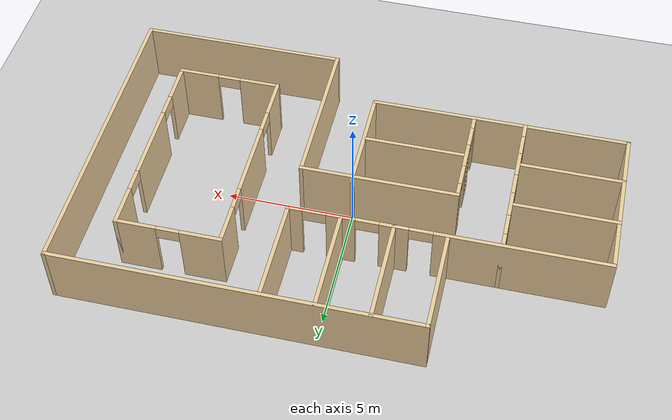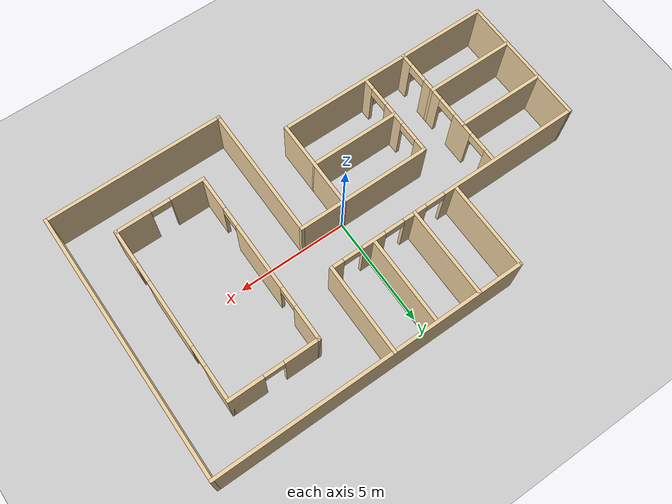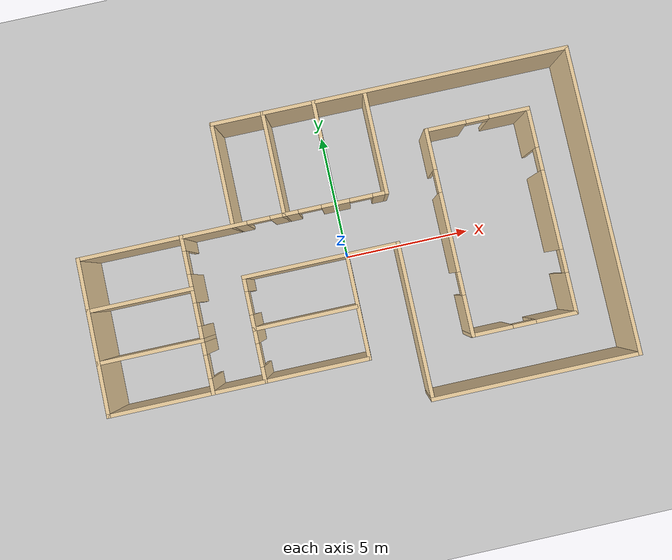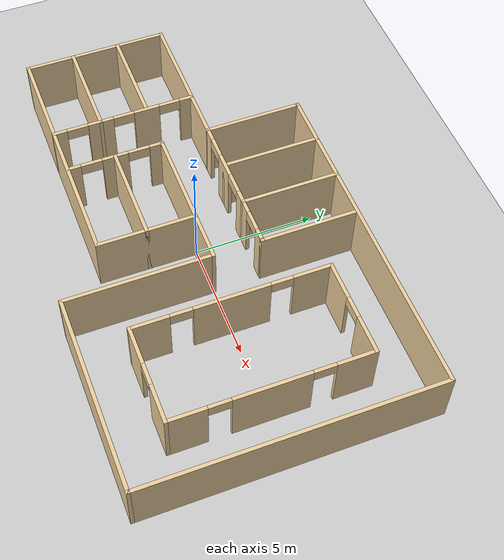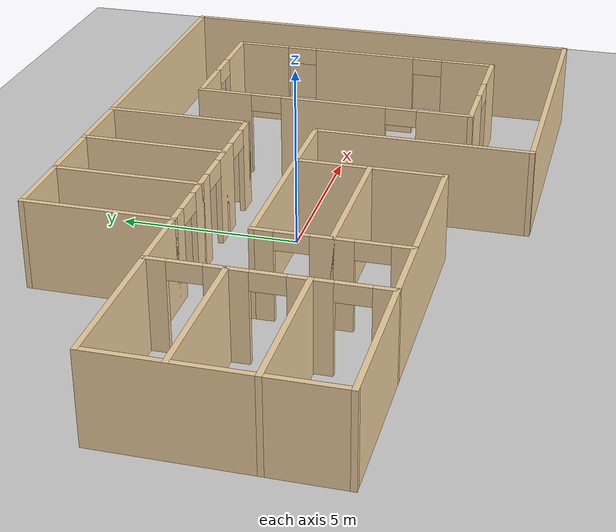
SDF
<sdf version="1.7">
 <world name="default">
  <light name="sun" type="directional">
   <pose>0 0 10 0 -0 0</pose>
   <diffuse>0.8 0.8 0.8 1</diffuse>
   <specular>0.2 0.2 0.2 1</specular>
   <attenuation>
    <range>1000</range>
    <constant>0.9</constant>
    <linear>0.01</linear>
    <quadratic>0.001</quadratic>
   </attenuation>
   <direction>-0.5 0.1 -0.9</direction>
   <spot><inner_angle>0</inner_angle><outer_angle>0</outer_angle><falloff>0</falloff></spot>
  </light>
  <model name="ground_plane">
   <static>1</static>
   <link name="link">
    <collision name="collision">
     <geometry><plane><normal>0 0 1</normal><size>100 100</size></plane></geometry>
     <surface>
      <contact><collide_bitmask>65535</collide_bitmask></contact>
      <friction><ode><mu>100</mu><mu2>50</mu2></ode></friction>
     </surface>
    </collision>
    <visual name="visual">
     <cast_shadows>0</cast_shadows>
     <geometry><plane><normal>0 0 1</normal><size>100 100</size></plane></geometry>
     <material>
      <script><uri>file://media/materials/scripts/gazebo.material</uri><name>Gazebo/Grey</name></script>
     </material>
    </visual>
   </link>
  </model>
  <gravity>0 0 -9.8</gravity>
  <magnetic_field>6e-06 2.3e-05 -4.2e-05</magnetic_field>
  <atmosphere type="adiabatic"/>
  <physics type="ode">
   <max_step_size>0.001</max_step_size>
   <real_time_factor>1</real_time_factor>
   <real_time_update_rate>1000</real_time_update_rate>
  </physics>
  <scene><ambient>0.4 0.4 0.4 1</ambient><background>0.7 0.7 0.7 1</background><shadows>1</shadows></scene>
  <spherical_coordinates>
   <surface_model>EARTH_WGS84</surface_model>
   <latitude_deg>0</latitude_deg>
   <longitude_deg>0</longitude_deg>
   <elevation>0</elevation>
   <heading_deg>0</heading_deg>
  </spherical_coordinates>
  <model name="test_small">
   <link name="Wall_0">
    <collision name="Wall_0_Collision">
     <geometry><box><size>14.15 0.15 2.5</size></box></geometry>
     <pose>0 0 1.25 0 -0 0</pose>
    </collision>
    <visual name="Wall_0_Visual">
     <pose>0 0 1.25 0 -0 0</pose>
     <geometry><box><size>14.15 0.15 2.5</size></box></geometry>
     <material>
      <script><uri>file://media/materials/scripts/gazebo.material</uri><name>Gazebo/Grey</name></script>
      <ambient>0.921569 0.807843 0.615686 1</ambient>
     </material>
     <meta><layer>0</layer></meta>
    </visual>
    <pose>3 6 0 0 -0 3.14159</pose>
   </link>
   <link name="Wall_10">
    <pose>-4 2 0 0 -0 0</pose>
    <visual name="Wall_10_Visual_0">
     <pose>-2.7625 0 1.25 0 -0 0</pose>
     <geometry><box><size>6.625 0.15 2.5</size></box></geometry>
     <material>
      <script><uri>file://media/materials/scripts/gazebo.material</uri><name>Gazebo/Grey</name></script>
      <ambient>0.921569 0.807843 0.615686 1</ambient>
     </material>
     <meta><layer>0</layer></meta>
    </visual>
    <collision name="Wall_10_Collision_0">
     <geometry><box><size>6.625 0.15 2.5</size></box></geometry>
     <pose>-2.7625 0 1.25 0 -0 0</pose>
    </collision>
    <visual name="Wall_10_Visual_1">
     <pose>2 0 1.25 0 -0 0</pose>
     <geometry><box><size>1.1 0.15 2.5</size></box></geometry>
     <material>
      <script><uri>file://media/materials/scripts/gazebo.material</uri><name>Gazebo/Grey</name></script>
      <ambient>0.921569 0.807843 0.615686 1</ambient>
     </material>
     <meta><layer>0</layer></meta>
    </visual>
    <collision name="Wall_10_Collision_1">
     <geometry><box><size>1.1 0.15 2.5</size></box></geometry>
     <pose>2 0 1.25 0 -0 0</pose>
    </collision>
    <visual name="Wall_10_Visual_2">
     <pose>4 0 1.25 0 -0 0</pose>
     <geometry><box><size>1.1 0.15 2.5</size></box></geometry>
     <material>
      <script><uri>file://media/materials/scripts/gazebo.material</uri><name>Gazebo/Grey</name></script>
      <ambient>0.921569 0.807843 0.615686 1</ambient>
     </material>
     <meta><layer>0</layer></meta>
    </visual>
    <collision name="Wall_10_Collision_2">
     <geometry><box><size>1.1 0.15 2.5</size></box></geometry>
     <pose>4 0 1.25 0 -0 0</pose>
    </collision>
    <visual name="Wall_10_Visual_3">
     <pose>5.7625 0 1.25 0 -0 0</pose>
     <geometry><box><size>0.625 0.15 2.5</size></box></geometry>
     <material>
      <script><uri>file://media/materials/scripts/gazebo.material</uri><name>Gazebo/Grey</name></script>
      <ambient>0.921569 0.807843 0.615686 1</ambient>
     </material>
     <meta><layer>0</layer></meta>
    </visual>
    <collision name="Wall_10_Collision_3">
     <geometry><box><size>0.625 0.15 2.5</size></box></geometry>
     <pose>5.7625 0 1.25 0 -0 0</pose>
    </collision>
    <visual name="Wall_10_Visual_4">
     <pose>1 0 2.25 0 -0 0</pose>
     <geometry><box><size>0.9 0.15 0.5</size></box></geometry>
     <material>
      <script><uri>file://media/materials/scripts/gazebo.material</uri><name>Gazebo/Grey</name></script>
      <ambient>0.921569 0.807843 0.615686 1</ambient>
     </material>
     <meta><layer>0</layer></meta>
    </visual>
    <collision name="Wall_10_Collision_4">
     <geometry><box><size>0.9 0.15 0.5</size></box></geometry>
     <pose>1 0 2.25 0 -0 0</pose>
    </collision>
    <visual name="Wall_10_Visual_5">
     <pose>3 0 2.25 0 -0 0</pose>
     <geometry><box><size>0.9 0.15 0.5</size></box></geometry>
     <material>
      <script><uri>file://media/materials/scripts/gazebo.material</uri><name>Gazebo/Grey</name></script>
      <ambient>0.921569 0.807843 0.615686 1</ambient>
     </material>
     <meta><layer>0</layer></meta>
    </visual>
    <collision name="Wall_10_Collision_5">
     <geometry><box><size>0.9 0.15 0.5</size></box></geometry>
     <pose>3 0 2.25 0 -0 0</pose>
    </collision>
    <visual name="Wall_10_Visual_6">
     <pose>5 0 2.25 0 -0 0</pose>
     <geometry><box><size>0.9 0.15 0.5</size></box></geometry>
     <material>
      <script><uri>file://media/materials/scripts/gazebo.material</uri><name>Gazebo/Grey</name></script>
      <ambient>0.921569 0.807843 0.615686 1</ambient>
     </material>
     <meta><layer>0</layer></meta>
    </visual>
    <collision name="Wall_10_Collision_6">
     <geometry><box><size>0.9 0.15 0.5</size></box></geometry>
     <pose>5 0 2.25 0 -0 0</pose>
    </collision>
   </link>
   <link name="Wall_11">
    <collision name="Wall_11_Collision">
     <geometry><box><size>4.15 0.15 2.5</size></box></geometry>
     <pose>0 0 1.25 0 -0 0</pose>
    </collision>
    <visual name="Wall_11_Visual">
     <pose>0 0 1.25 0 -0 0</pose>
     <geometry><box><size>4.15 0.15 2.5</size></box></geometry>
     <material>
      <script><uri>file://media/materials/scripts/gazebo.material</uri><name>Gazebo/Grey</name></script>
      <ambient>0.921569 0.807843 0.615686 1</ambient>
     </material>
     <meta><layer>0</layer></meta>
    </visual>
    <pose>2 4 0 0 -0 1.5708</pose>
   </link>
   <link name="Wall_13">
    <collision name="Wall_13_Collision">
     <geometry><box><size>4.15 0.15 2.5</size></box></geometry>
     <pose>0 0 1.25 0 -0 0</pose>
    </collision>
    <visual name="Wall_13_Visual">
     <pose>0 0 1.25 0 -0 0</pose>
     <geometry><box><size>4.15 0.15 2.5</size></box></geometry>
     <material>
      <script><uri>file://media/materials/scripts/gazebo.material</uri><name>Gazebo/Grey</name></script>
      <ambient>0.921569 0.807843 0.615686 1</ambient>
     </material>
     <meta><layer>0</layer></meta>
    </visual>
    <pose>-4 4 0 0 -0 -1.5708</pose>
   </link>
   <link name="Wall_15">
    <collision name="Wall_15_Collision">
     <geometry><box><size>4.15 0.15 2.5</size></box></geometry>
     <pose>0 0 1.25 0 -0 0</pose>
    </collision>
    <visual name="Wall_15_Visual">
     <pose>0 0 1.25 0 -0 0</pose>
     <geometry><box><size>4.15 0.15 2.5</size></box></geometry>
     <material>
      <script><uri>file://media/materials/scripts/gazebo.material</uri><name>Gazebo/Grey</name></script>
      <ambient>0.921569 0.807843 0.615686 1</ambient>
     </material>
     <meta><layer>0</layer></meta>
    </visual>
    <pose>-2 4 0 0 -0 -1.5708</pose>
   </link>
   <link name="Wall_17">
    <collision name="Wall_17_Collision">
     <geometry><box><size>4.15 0.15 2.5</size></box></geometry>
     <pose>0 0 1.25 0 -0 0</pose>
    </collision>
    <visual name="Wall_17_Visual">
     <pose>0 0 1.25 0 -0 0</pose>
     <geometry><box><size>4.15 0.15 2.5</size></box></geometry>
     <material>
      <script><uri>file://media/materials/scripts/gazebo.material</uri><name>Gazebo/Grey</name></script>
      <ambient>0.921569 0.807843 0.615686 1</ambient>
     </material>
     <meta><layer>0</layer></meta>
    </visual>
    <pose>0 4 0 0 -0 -1.5708</pose>
   </link>
   <link name="Wall_19">
    <collision name="Wall_19_Collision">
     <geometry><box><size>4.15 0.15 2.5</size></box></geometry>
     <pose>0 0 1.25 0 -0 0</pose>
    </collision>
    <visual name="Wall_19_Visual">
     <pose>0 0 1.25 0 -0 0</pose>
     <geometry><box><size>4.15 0.15 2.5</size></box></geometry>
     <material>
      <script><uri>file://media/materials/scripts/gazebo.material</uri><name>Gazebo/Grey</name></script>
      <ambient>0.921569 0.807843 0.615686 1</ambient>
     </material>
     <meta><layer>0</layer></meta>
    </visual>
    <pose>0 -2 0 0 -0 1.5708</pose>
   </link>
   <link name="Wall_2">
    <collision name="Wall_2_Collision">
     <geometry><box><size>12.15 0.15 2.5</size></box></geometry>
     <pose>0 0 1.25 0 -0 0</pose>
    </collision>
    <visual name="Wall_2_Visual">
     <pose>0 0 1.25 0 -0 0</pose>
     <geometry><box><size>12.15 0.15 2.5</size></box></geometry>
     <material>
      <script><uri>file://media/materials/scripts/gazebo.material</uri><name>Gazebo/Grey</name></script>
      <ambient>0.921569 0.807843 0.615686 1</ambient>
     </material>
     <meta><layer>0</layer></meta>
    </visual>
    <pose>10 0 0 0 -0 -1.5708</pose>
   </link>
   <link name="Wall_21">
    <collision name="Wall_21_Collision">
     <geometry><box><size>4.15 0.15 2.5</size></box></geometry>
     <pose>0 0 1.25 0 -0 0</pose>
    </collision>
    <visual name="Wall_21_Visual">
     <pose>0 0 1.25 0 -0 0</pose>
     <geometry><box><size>4.15 0.15 2.5</size></box></geometry>
     <material>
      <script><uri>file://media/materials/scripts/gazebo.material</uri><name>Gazebo/Grey</name></script>
      <ambient>0.921569 0.807843 0.615686 1</ambient>
     </material>
     <meta><layer>0</layer></meta>
    </visual>
    <pose>-2 -2 0 0 -0 0</pose>
   </link>
   <link name="Wall_23">
    <pose>-6 -1 0 0 -0 -1.5708</pose>
    <visual name="Wall_23_Visual_0">
     <pose>-2.7625 0 1.25 0 -0 0</pose>
     <geometry><box><size>0.625 0.15 2.5</size></box></geometry>
     <material>
      <script><uri>file://media/materials/scripts/gazebo.material</uri><name>Gazebo/Grey</name></script>
      <ambient>0.921569 0.807843 0.615686 1</ambient>
     </material>
     <meta><layer>0</layer></meta>
    </visual>
    <collision name="Wall_23_Collision_0">
     <geometry><box><size>0.625 0.15 2.5</size></box></geometry>
     <pose>-2.7625 0 1.25 0 -0 0</pose>
    </collision>
    <visual name="Wall_23_Visual_1">
     <pose>-0.999281 0 1.25 0 -0 0</pose>
     <geometry><box><size>1.10144 0.15 2.5</size></box></geometry>
     <material>
      <script><uri>file://media/materials/scripts/gazebo.material</uri><name>Gazebo/Grey</name></script>
      <ambient>0.921569 0.807843 0.615686 1</ambient>
     </material>
     <meta><layer>0</layer></meta>
    </visual>
    <collision name="Wall_23_Collision_1">
     <geometry><box><size>1.10144 0.15 2.5</size></box></geometry>
     <pose>-0.999281 0 1.25 0 -0 0</pose>
    </collision>
    <visual name="Wall_23_Visual_2">
     <pose>1.00072 0 1.25 0 -0 0</pose>
     <geometry><box><size>1.09856 0.15 2.5</size></box></geometry>
     <material>
      <script><uri>file://media/materials/scripts/gazebo.material</uri><name>Gazebo/Grey</name></script>
      <ambient>0.921569 0.807843 0.615686 1</ambient>
     </material>
     <meta><layer>0</layer></meta>
    </visual>
    <collision name="Wall_23_Collision_2">
     <geometry><box><size>1.09856 0.15 2.5</size></box></geometry>
     <pose>1.00072 0 1.25 0 -0 0</pose>
    </collision>
    <visual name="Wall_23_Visual_3">
     <pose>2.7625 0 1.25 0 -0 0</pose>
     <geometry><box><size>0.625 0.15 2.5</size></box></geometry>
     <material>
      <script><uri>file://media/materials/scripts/gazebo.material</uri><name>Gazebo/Grey</name></script>
      <ambient>0.921569 0.807843 0.615686 1</ambient>
     </material>
     <meta><layer>0</layer></meta>
    </visual>
    <collision name="Wall_23_Collision_3">
     <geometry><box><size>0.625 0.15 2.5</size></box></geometry>
     <pose>2.7625 0 1.25 0 -0 0</pose>
    </collision>
    <visual name="Wall_23_Visual_4">
     <pose>-2 0 2.25 0 -0 0</pose>
     <geometry><box><size>0.9 0.15 0.5</size></box></geometry>
     <material>
      <script><uri>file://media/materials/scripts/gazebo.material</uri><name>Gazebo/Grey</name></script>
      <ambient>0.921569 0.807843 0.615686 1</ambient>
     </material>
     <meta><layer>0</layer></meta>
    </visual>
    <collision name="Wall_23_Collision_4">
     <geometry><box><size>0.9 0.15 0.5</size></box></geometry>
     <pose>-2 0 2.25 0 -0 0</pose>
    </collision>
    <visual name="Wall_23_Visual_5">
     <pose>0.001438 0 2.25 0 -0 0</pose>
     <geometry><box><size>0.9 0.15 0.5</size></box></geometry>
     <material>
      <script><uri>file://media/materials/scripts/gazebo.material</uri><name>Gazebo/Grey</name></script>
      <ambient>0.921569 0.807843 0.615686 1</ambient>
     </material>
     <meta><layer>0</layer></meta>
    </visual>
    <collision name="Wall_23_Collision_5">
     <geometry><box><size>0.9 0.15 0.5</size></box></geometry>
     <pose>0.001438 0 2.25 0 -0 0</pose>
    </collision>
    <visual name="Wall_23_Visual_6">
     <pose>2 0 2.25 0 -0 0</pose>
     <geometry><box><size>0.9 0.15 0.5</size></box></geometry>
     <material>
      <script><uri>file://media/materials/scripts/gazebo.material</uri><name>Gazebo/Grey</name></script>
      <ambient>0.921569 0.807843 0.615686 1</ambient>
     </material>
     <meta><layer>0</layer></meta>
    </visual>
    <collision name="Wall_23_Collision_6">
     <geometry><box><size>0.9 0.15 0.5</size></box></geometry>
     <pose>2 0 2.25 0 -0 0</pose>
    </collision>
   </link>
   <link name="Wall_25">
    <collision name="Wall_25_Collision">
     <geometry><box><size>4.15 0.15 2.5</size></box></geometry>
     <pose>0 0 1.25 0 -0 0</pose>
    </collision>
    <visual name="Wall_25_Visual">
     <pose>0 0 1.25 0 -0 0</pose>
     <geometry><box><size>4.15 0.15 2.5</size></box></geometry>
     <material>
      <script><uri>file://media/materials/scripts/gazebo.material</uri><name>Gazebo/Grey</name></script>
      <ambient>0.921569 0.807843 0.615686 1</ambient>
     </material>
     <meta><layer>0</layer></meta>
    </visual>
    <pose>-8 -2 0 0 -0 3.14159</pose>
   </link>
   <link name="Wall_27">
    <collision name="Wall_27_Collision">
     <geometry><box><size>4.15 0.15 2.5</size></box></geometry>
     <pose>0 0 1.25 0 -0 0</pose>
    </collision>
    <visual name="Wall_27_Visual">
     <pose>0 0 1.25 0 -0 0</pose>
     <geometry><box><size>4.15 0.15 2.5</size></box></geometry>
     <material>
      <script><uri>file://media/materials/scripts/gazebo.material</uri><name>Gazebo/Grey</name></script>
      <ambient>0.921569 0.807843 0.615686 1</ambient>
     </material>
     <meta><layer>0</layer></meta>
    </visual>
    <pose>-8 0 0 0 -0 3.14159</pose>
   </link>
   <link name="Wall_29">
    <pose>6 4 0 0 -0 0</pose>
    <visual name="Wall_29_Visual_0">
     <pose>-1.25921 0 1.25 0 -0 0</pose>
     <geometry><box><size>1.63158 0.15 2.5</size></box></geometry>
     <material>
      <script><uri>file://media/materials/scripts/gazebo.material</uri><name>Gazebo/Grey</name></script>
      <ambient>0.921569 0.807843 0.615686 1</ambient>
     </material>
     <meta><layer>0</layer></meta>
    </visual>
    <collision name="Wall_29_Collision_0">
     <geometry><box><size>1.63158 0.15 2.5</size></box></geometry>
     <pose>-1.25921 0 1.25 0 -0 0</pose>
    </collision>
    <visual name="Wall_29_Visual_1">
     <pose>1.26579 0 1.25 0 -0 0</pose>
     <geometry><box><size>1.61842 0.15 2.5</size></box></geometry>
     <material>
      <script><uri>file://media/materials/scripts/gazebo.material</uri><name>Gazebo/Grey</name></script>
      <ambient>0.921569 0.807843 0.615686 1</ambient>
     </material>
     <meta><layer>0</layer></meta>
    </visual>
    <collision name="Wall_29_Collision_1">
     <geometry><box><size>1.61842 0.15 2.5</size></box></geometry>
     <pose>1.26579 0 1.25 0 -0 0</pose>
    </collision>
    <visual name="Wall_29_Visual_2">
     <pose>0.006581 0 2.25 0 -0 0</pose>
     <geometry><box><size>0.9 0.15 0.5</size></box></geometry>
     <material>
      <script><uri>file://media/materials/scripts/gazebo.material</uri><name>Gazebo/Grey</name></script>
      <ambient>0.921569 0.807843 0.615686 1</ambient>
     </material>
     <meta><layer>0</layer></meta>
    </visual>
    <collision name="Wall_29_Collision_2">
     <geometry><box><size>0.9 0.15 0.5</size></box></geometry>
     <pose>0.006581 0 2.25 0 -0 0</pose>
    </collision>
   </link>
   <link name="Wall_3">
    <collision name="Wall_3_Collision">
     <geometry><box><size>8.15 0.15 2.5</size></box></geometry>
     <pose>0 0 1.25 0 -0 0</pose>
    </collision>
    <visual name="Wall_3_Visual">
     <pose>0 0 1.25 0 -0 0</pose>
     <geometry><box><size>8.15 0.15 2.5</size></box></geometry>
     <material>
      <script><uri>file://media/materials/scripts/gazebo.material</uri><name>Gazebo/Grey</name></script>
      <ambient>0.921569 0.807843 0.615686 1</ambient>
     </material>
     <meta><layer>0</layer></meta>
    </visual>
    <pose>6 -6 0 0 -0 3.14159</pose>
   </link>
   <link name="Wall_30">
    <pose>8 0 0 0 -0 -1.5708</pose>
    <visual name="Wall_30_Visual_0">
     <pose>-3.2625 0 1.25 0 -0 0</pose>
     <geometry><box><size>1.625 0.15 2.5</size></box></geometry>
     <material>
      <script><uri>file://media/materials/scripts/gazebo.material</uri><name>Gazebo/Grey</name></script>
      <ambient>0.921569 0.807843 0.615686 1</ambient>
     </material>
     <meta><layer>0</layer></meta>
    </visual>
    <collision name="Wall_30_Collision_0">
     <geometry><box><size>1.625 0.15 2.5</size></box></geometry>
     <pose>-3.2625 0 1.25 0 -0 0</pose>
    </collision>
    <visual name="Wall_30_Visual_1">
     <pose>0 0 1.25 0 -0 0</pose>
     <geometry><box><size>3.1 0.15 2.5</size></box></geometry>
     <material>
      <script><uri>file://media/materials/scripts/gazebo.material</uri><name>Gazebo/Grey</name></script>
      <ambient>0.921569 0.807843 0.615686 1</ambient>
     </material>
     <meta><layer>0</layer></meta>
    </visual>
    <collision name="Wall_30_Collision_1">
     <geometry><box><size>3.1 0.15 2.5</size></box></geometry>
     <pose>0 0 1.25 0 -0 0</pose>
    </collision>
    <visual name="Wall_30_Visual_2">
     <pose>3.2625 0 1.25 0 -0 0</pose>
     <geometry><box><size>1.625 0.15 2.5</size></box></geometry>
     <material>
      <script><uri>file://media/materials/scripts/gazebo.material</uri><name>Gazebo/Grey</name></script>
      <ambient>0.921569 0.807843 0.615686 1</ambient>
     </material>
     <meta><layer>0</layer></meta>
    </visual>
    <collision name="Wall_30_Collision_2">
     <geometry><box><size>1.625 0.15 2.5</size></box></geometry>
     <pose>3.2625 0 1.25 0 -0 0</pose>
    </collision>
    <visual name="Wall_30_Visual_3">
     <pose>-2 0 2.25 0 -0 0</pose>
     <geometry><box><size>0.9 0.15 0.5</size></box></geometry>
     <material>
      <script><uri>file://media/materials/scripts/gazebo.material</uri><name>Gazebo/Grey</name></script>
      <ambient>0.921569 0.807843 0.615686 1</ambient>
     </material>
     <meta><layer>0</layer></meta>
    </visual>
    <collision name="Wall_30_Collision_3">
     <geometry><box><size>0.9 0.15 0.5</size></box></geometry>
     <pose>-2 0 2.25 0 -0 0</pose>
    </collision>
    <visual name="Wall_30_Visual_4">
     <pose>2 0 2.25 0 -0 0</pose>
     <geometry><box><size>0.9 0.15 0.5</size></box></geometry>
     <material>
      <script><uri>file://media/materials/scripts/gazebo.material</uri><name>Gazebo/Grey</name></script>
      <ambient>0.921569 0.807843 0.615686 1</ambient>
     </material>
     <meta><layer>0</layer></meta>
    </visual>
    <collision name="Wall_30_Collision_4">
     <geometry><box><size>0.9 0.15 0.5</size></box></geometry>
     <pose>2 0 2.25 0 -0 0</pose>
    </collision>
   </link>
   <link name="Wall_31">
    <pose>6 -4 0 0 -0 3.14159</pose>
    <visual name="Wall_31_Visual_0">
     <pose>-1.2625 0 1.25 0 -0 0</pose>
     <geometry><box><size>1.625 0.15 2.5</size></box></geometry>
     <material>
      <script><uri>file://media/materials/scripts/gazebo.material</uri><name>Gazebo/Grey</name></script>
      <ambient>0.921569 0.807843 0.615686 1</ambient>
     </material>
     <meta><layer>0</layer></meta>
    </visual>
    <collision name="Wall_31_Collision_0">
     <geometry><box><size>1.625 0.15 2.5</size></box></geometry>
     <pose>-1.2625 0 1.25 0 -0 0</pose>
    </collision>
    <visual name="Wall_31_Visual_1">
     <pose>1.2625 0 1.25 0 -0 0</pose>
     <geometry><box><size>1.625 0.15 2.5</size></box></geometry>
     <material>
      <script><uri>file://media/materials/scripts/gazebo.material</uri><name>Gazebo/Grey</name></script>
      <ambient>0.921569 0.807843 0.615686 1</ambient>
     </material>
     <meta><layer>0</layer></meta>
    </visual>
    <collision name="Wall_31_Collision_1">
     <geometry><box><size>1.625 0.15 2.5</size></box></geometry>
     <pose>1.2625 0 1.25 0 -0 0</pose>
    </collision>
    <visual name="Wall_31_Visual_2">
     <pose>0 0 2.25 0 -0 0</pose>
     <geometry><box><size>0.9 0.15 0.5</size></box></geometry>
     <material>
      <script><uri>file://media/materials/scripts/gazebo.material</uri><name>Gazebo/Grey</name></script>
      <ambient>0.921569 0.807843 0.615686 1</ambient>
     </material>
     <meta><layer>0</layer></meta>
    </visual>
    <collision name="Wall_31_Collision_2">
     <geometry><box><size>0.9 0.15 0.5</size></box></geometry>
     <pose>0 0 2.25 0 -0 0</pose>
    </collision>
   </link>
   <link name="Wall_32">
    <pose>4 0 0 0 -0 1.5708</pose>
    <visual name="Wall_32_Visual_0">
     <pose>-3.2625 0 1.25 0 -0 0</pose>
     <geometry><box><size>1.625 0.15 2.5</size></box></geometry>
     <material>
      <script><uri>file://media/materials/scripts/gazebo.material</uri><name>Gazebo/Grey</name></script>
      <ambient>0.921569 0.807843 0.615686 1</ambient>
     </material>
     <meta><layer>0</layer></meta>
    </visual>
    <collision name="Wall_32_Collision_0">
     <geometry><box><size>1.625 0.15 2.5</size></box></geometry>
     <pose>-3.2625 0 1.25 0 -0 0</pose>
    </collision>
    <visual name="Wall_32_Visual_1">
     <pose>0 0 1.25 0 -0 0</pose>
     <geometry><box><size>3.1 0.15 2.5</size></box></geometry>
     <material>
      <script><uri>file://media/materials/scripts/gazebo.material</uri><name>Gazebo/Grey</name></script>
      <ambient>0.921569 0.807843 0.615686 1</ambient>
     </material>
     <meta><layer>0</layer></meta>
    </visual>
    <collision name="Wall_32_Collision_1">
     <geometry><box><size>3.1 0.15 2.5</size></box></geometry>
     <pose>0 0 1.25 0 -0 0</pose>
    </collision>
    <visual name="Wall_32_Visual_2">
     <pose>3.2625 0 1.25 0 -0 0</pose>
     <geometry><box><size>1.625 0.15 2.5</size></box></geometry>
     <material>
      <script><uri>file://media/materials/scripts/gazebo.material</uri><name>Gazebo/Grey</name></script>
      <ambient>0.921569 0.807843 0.615686 1</ambient>
     </material>
     <meta><layer>0</layer></meta>
    </visual>
    <collision name="Wall_32_Collision_2">
     <geometry><box><size>1.625 0.15 2.5</size></box></geometry>
     <pose>3.2625 0 1.25 0 -0 0</pose>
    </collision>
    <visual name="Wall_32_Visual_3">
     <pose>-2 0 2.25 0 -0 0</pose>
     <geometry><box><size>0.9 0.15 0.5</size></box></geometry>
     <material>
      <script><uri>file://media/materials/scripts/gazebo.material</uri><name>Gazebo/Grey</name></script>
      <ambient>0.921569 0.807843 0.615686 1</ambient>
     </material>
     <meta><layer>0</layer></meta>
    </visual>
    <collision name="Wall_32_Collision_3">
     <geometry><box><size>0.9 0.15 0.5</size></box></geometry>
     <pose>-2 0 2.25 0 -0 0</pose>
    </collision>
    <visual name="Wall_32_Visual_4">
     <pose>2 0 2.25 0 -0 0</pose>
     <geometry><box><size>0.9 0.15 0.5</size></box></geometry>
     <material>
      <script><uri>file://media/materials/scripts/gazebo.material</uri><name>Gazebo/Grey</name></script>
      <ambient>0.921569 0.807843 0.615686 1</ambient>
     </material>
     <meta><layer>0</layer></meta>
    </visual>
    <collision name="Wall_32_Collision_4">
     <geometry><box><size>0.9 0.15 0.5</size></box></geometry>
     <pose>2 0 2.25 0 -0 0</pose>
    </collision>
   </link>
   <link name="Wall_4">
    <collision name="Wall_4_Collision">
     <geometry><box><size>6.15 0.15 2.5</size></box></geometry>
     <pose>0 0 1.25 0 -0 0</pose>
    </collision>
    <visual name="Wall_4_Visual">
     <pose>0 0 1.25 0 -0 0</pose>
     <geometry><box><size>6.15 0.15 2.5</size></box></geometry>
     <material>
      <script><uri>file://media/materials/scripts/gazebo.material</uri><name>Gazebo/Grey</name></script>
      <ambient>0.921569 0.807843 0.615686 1</ambient>
     </material>
     <meta><layer>0</layer></meta>
    </visual>
    <pose>2 -3 0 0 -0 1.5708</pose>
   </link>
   <link name="Wall_5">
    <collision name="Wall_5_Collision">
     <geometry><box><size>6.15 0.15 2.5</size></box></geometry>
     <pose>0 0 1.25 0 -0 0</pose>
    </collision>
    <visual name="Wall_5_Visual">
     <pose>0 0 1.25 0 -0 0</pose>
     <geometry><box><size>6.15 0.15 2.5</size></box></geometry>
     <material>
      <script><uri>file://media/materials/scripts/gazebo.material</uri><name>Gazebo/Grey</name></script>
      <ambient>0.921569 0.807843 0.615686 1</ambient>
     </material>
     <meta><layer>0</layer></meta>
    </visual>
    <pose>-1 0 0 0 -0 3.14159</pose>
   </link>
   <link name="Wall_6">
    <pose>-4 -2 0 0 -0 -1.5708</pose>
    <visual name="Wall_6_Visual_0">
     <pose>-1.7625 0 1.25 0 -0 0</pose>
     <geometry><box><size>0.625 0.15 2.5</size></box></geometry>
     <material>
      <script><uri>file://media/materials/scripts/gazebo.material</uri><name>Gazebo/Grey</name></script>
      <ambient>0.921569 0.807843 0.615686 1</ambient>
     </material>
     <meta><layer>0</layer></meta>
    </visual>
    <collision name="Wall_6_Collision_0">
     <geometry><box><size>0.625 0.15 2.5</size></box></geometry>
     <pose>-1.7625 0 1.25 0 -0 0</pose>
    </collision>
    <visual name="Wall_6_Visual_1">
     <pose>0 0 1.25 0 -0 0</pose>
     <geometry><box><size>1.1 0.15 2.5</size></box></geometry>
     <material>
      <script><uri>file://media/materials/scripts/gazebo.material</uri><name>Gazebo/Grey</name></script>
      <ambient>0.921569 0.807843 0.615686 1</ambient>
     </material>
     <meta><layer>0</layer></meta>
    </visual>
    <collision name="Wall_6_Collision_1">
     <geometry><box><size>1.1 0.15 2.5</size></box></geometry>
     <pose>0 0 1.25 0 -0 0</pose>
    </collision>
    <visual name="Wall_6_Visual_2">
     <pose>1.7625 0 1.25 0 -0 0</pose>
     <geometry><box><size>0.625 0.15 2.5</size></box></geometry>
     <material>
      <script><uri>file://media/materials/scripts/gazebo.material</uri><name>Gazebo/Grey</name></script>
      <ambient>0.921569 0.807843 0.615686 1</ambient>
     </material>
     <meta><layer>0</layer></meta>
    </visual>
    <collision name="Wall_6_Collision_2">
     <geometry><box><size>0.625 0.15 2.5</size></box></geometry>
     <pose>1.7625 0 1.25 0 -0 0</pose>
    </collision>
    <visual name="Wall_6_Visual_3">
     <pose>-1 0 2.25 0 -0 0</pose>
     <geometry><box><size>0.9 0.15 0.5</size></box></geometry>
     <material>
      <script><uri>file://media/materials/scripts/gazebo.material</uri><name>Gazebo/Grey</name></script>
      <ambient>0.921569 0.807843 0.615686 1</ambient>
     </material>
     <meta><layer>0</layer></meta>
    </visual>
    <collision name="Wall_6_Collision_3">
     <geometry><box><size>0.9 0.15 0.5</size></box></geometry>
     <pose>-1 0 2.25 0 -0 0</pose>
    </collision>
    <visual name="Wall_6_Visual_4">
     <pose>1 0 2.25 0 -0 0</pose>
     <geometry><box><size>0.9 0.15 0.5</size></box></geometry>
     <material>
      <script><uri>file://media/materials/scripts/gazebo.material</uri><name>Gazebo/Grey</name></script>
      <ambient>0.921569 0.807843 0.615686 1</ambient>
     </material>
     <meta><layer>0</layer></meta>
    </visual>
    <collision name="Wall_6_Collision_4">
     <geometry><box><size>0.9 0.15 0.5</size></box></geometry>
     <pose>1 0 2.25 0 -0 0</pose>
    </collision>
   </link>
   <link name="Wall_8">
    <collision name="Wall_8_Collision">
     <geometry><box><size>10.15 0.15 2.5</size></box></geometry>
     <pose>0 0 1.25 0 -0 0</pose>
    </collision>
    <visual name="Wall_8_Visual">
     <pose>0 0 1.25 0 -0 0</pose>
     <geometry><box><size>10.15 0.15 2.5</size></box></geometry>
     <material>
      <script><uri>file://media/materials/scripts/gazebo.material</uri><name>Gazebo/Grey</name></script>
      <ambient>0.921569 0.807843 0.615686 1</ambient>
     </material>
     <meta><layer>0</layer></meta>
    </visual>
    <pose>-5 -4 0 0 -0 3.14159</pose>
   </link>
   <link name="Wall_9">
    <collision name="Wall_9_Collision">
     <geometry><box><size>6.15 0.15 2.5</size></box></geometry>
     <pose>0 0 1.25 0 -0 0</pose>
    </collision>
    <visual name="Wall_9_Visual">
     <pose>0 0 1.25 0 -0 0</pose>
     <geometry><box><size>6.15 0.15 2.5</size></box></geometry>
     <material>
      <script><uri>file://media/materials/scripts/gazebo.material</uri><name>Gazebo/Grey</name></script>
      <ambient>0.921569 0.807843 0.615686 1</ambient>
     </material>
     <meta><layer>0</layer></meta>
    </visual>
    <pose>-10 -1 0 0 -0 1.5708</pose>
   </link>
   <static>1</static>
  </model>
 </world>
</sdf>
